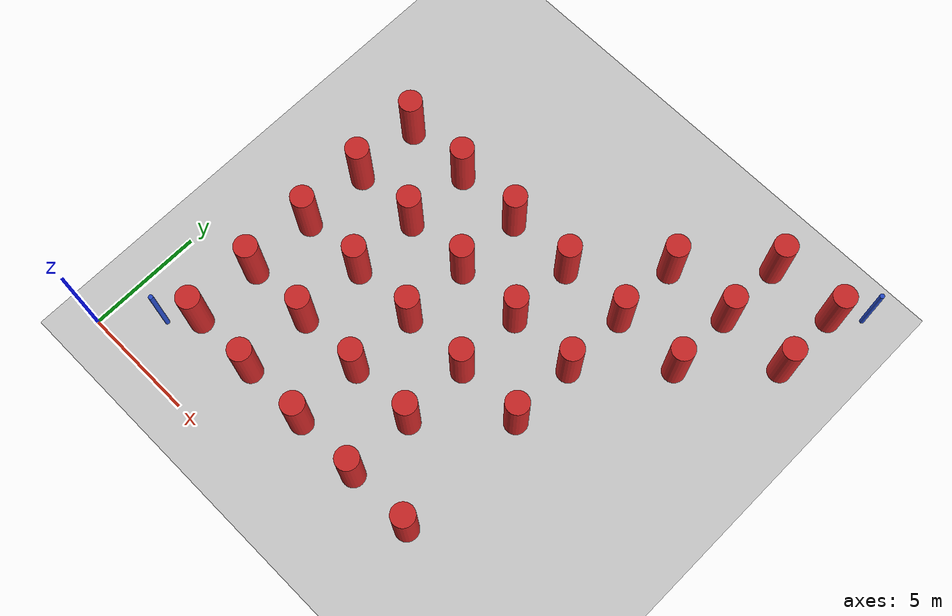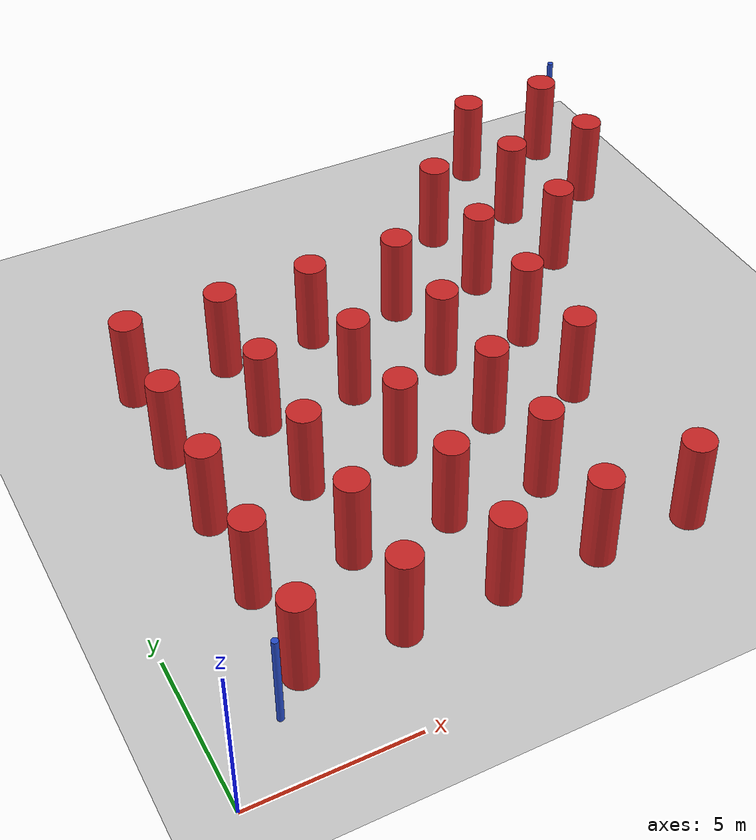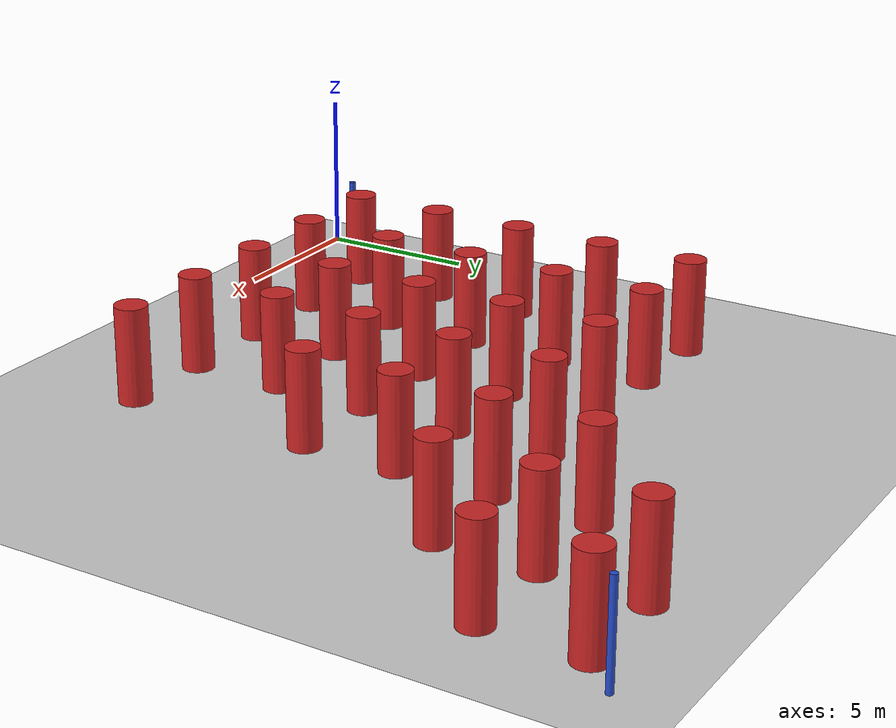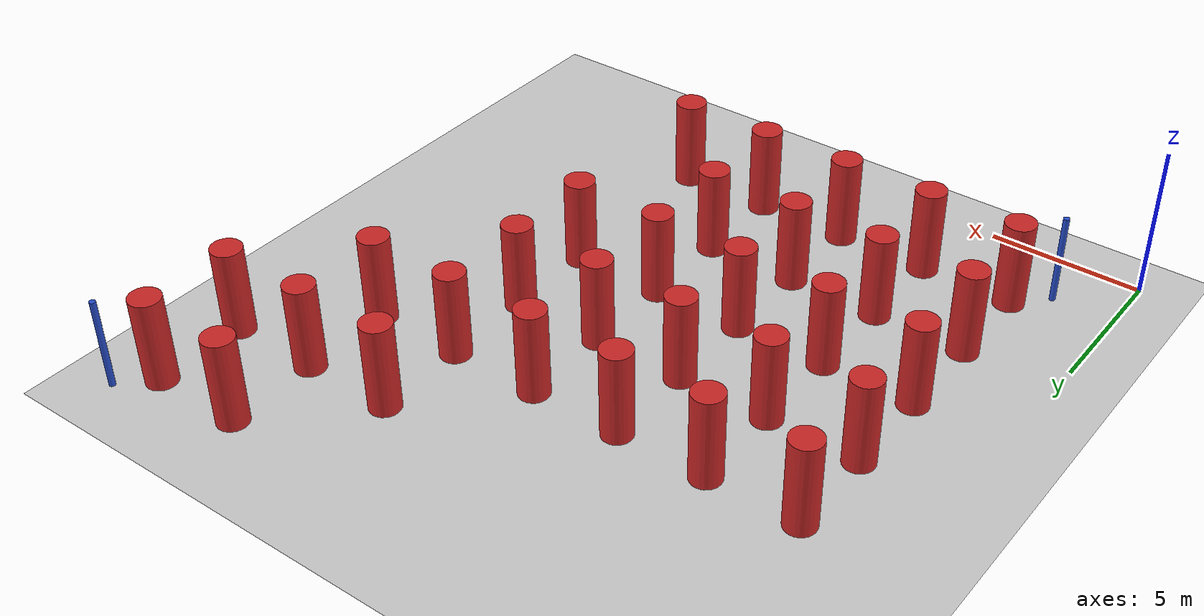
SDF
<sdf version='1.6'>
  <world name='default'>
    <light name='sun' type='directional'>
      <cast_shadows>1</cast_shadows>
      <pose>0 0 3 0 -0 0</pose>
      <diffuse>0.6 0.6 0.6 1</diffuse>
      <specular>0.3 0.3 0.3 1</specular>
      <attenuation>
        <range>1000</range>
        <constant>0.9</constant>
        <linear>0.01</linear>
        <quadratic>0.001</quadratic>
      </attenuation>
      <direction>-0.5 0.1 -0.9</direction>
    </light>
    <model name='ground_plane'>
      <static>1</static>
      <link name='link'>
        <collision name='collision'>
          <geometry>
            <plane>
              <normal>0 0 1</normal>
              <size>100 100</size>
            </plane>
          </geometry>
          <surface>
            <friction>
              <ode>
                <mu>100</mu>
                <mu2>15</mu2>
              </ode>
            </friction>
            <bounce/>
            <contact>
              <ode/>
            </contact>
          </surface>
          <max_contacts>9</max_contacts>
        </collision>
        <visual name='visual'>
          <cast_shadows>0</cast_shadows>
          <geometry>
            <plane>
              <normal>0 0 1</normal>
              <size>100 100</size>
            </plane>
          </geometry>
          <material>
            <script>
              <uri>file://media/materials/scripts/gazebo.material</uri>
              <name>Gazebo/Grey</name>
            </script>
          </material>
        </visual>
        <velocity_decay>
          <linear>0</linear>
          <angular>0</angular>
        </velocity_decay>
        <self_collide>0</self_collide>
        <kinematic>0</kinematic>
        <gravity>1</gravity>
      </link>
    </model>
    <physics type='ode'>
      <max_step_size>0.01</max_step_size>
      <real_time_factor>1</real_time_factor>
      <real_time_update_rate>100</real_time_update_rate>
      <gravity>0 0 -9.6</gravity>
    </physics>
    <scene>
      <ambient>0.6 0.6 0.6 1</ambient>
      <background>0.7 0.7 0.7 1</background>
      <shadows>1</shadows>
    </scene>
    <spherical_coordinates>
      <surface_model>EARTH_WGS84</surface_model>
      <latitude_deg>0</latitude_deg>
      <longitude_deg>0</longitude_deg>
      <elevation>0</elevation>
      <heading_deg>0</heading_deg>
    </spherical_coordinates>
    <model name='cylinder_1'>
      <pose>3 3 1.5 0 -0 0</pose>
      <link name='link'>
        <inertial>
          <mass>1000</mass>
          <inertia>
            <ixx>1000</ixx>
            <ixy>0</ixy>
            <ixz>0</ixz>
            <iyy>1000</iyy>
            <iyz>0</iyz>
            <izz>1000</izz>
          </inertia>
        </inertial>
        <collision name='collision'>
          <geometry>
            <cylinder>
              <radius>0.5</radius>
              <length>3</length>
            </cylinder>
          </geometry>
          <max_contacts>9</max_contacts>
          <surface>
            <bounce/>
            <friction>
              <ode/>
            </friction>
            <contact>
              <ode/>
            </contact>
          </surface>
        </collision>
        <visual name='visual'>
          <geometry>
            <cylinder>
              <radius>0.5</radius>
              <length>3</length>
            </cylinder>
          </geometry>
          <material>
            <script>
              <uri>file://media/materials/scripts/gazebo.material</uri>
              <name>Gazebo/Red</name>
            </script>
          </material>
        </visual>
        <velocity_decay>
          <linear>0</linear>
          <angular>0</angular>
        </velocity_decay>
        <self_collide>0</self_collide>
        <kinematic>0</kinematic>
        <gravity>1</gravity>
      </link>
      <static>1</static>
    </model>
    <model name='cylinder_2'>
      <pose>3 6 1.5 0 -0 0</pose>
      <link name='link'>
        <inertial>
          <mass>1000</mass>
          <inertia>
            <ixx>1000</ixx>
            <ixy>0</ixy>
            <ixz>0</ixz>
            <iyy>1000</iyy>
            <iyz>0</iyz>
            <izz>1000</izz>
          </inertia>
        </inertial>
        <collision name='collision'>
          <geometry>
            <cylinder>
              <radius>0.5</radius>
              <length>3</length>
            </cylinder>
          </geometry>
          <max_contacts>9</max_contacts>
          <surface>
            <bounce/>
            <friction>
              <ode/>
            </friction>
            <contact>
              <ode/>
            </contact>
          </surface>
        </collision>
        <visual name='visual'>
          <geometry>
            <cylinder>
              <radius>0.5</radius>
              <length>3</length>
            </cylinder>
          </geometry>
          <material>
            <script>
              <uri>file://media/materials/scripts/gazebo.material</uri>
              <name>Gazebo/Red</name>
            </script>
          </material>
        </visual>
        <velocity_decay>
          <linear>0</linear>
          <angular>0</angular>
        </velocity_decay>
        <self_collide>0</self_collide>
        <kinematic>0</kinematic>
        <gravity>1</gravity>
      </link>
      <static>1</static>
    </model>
    <model name='cylinder_3'>
      <pose>3 9 1.5 0 -0 0</pose>
      <link name='link'>
        <inertial>
          <mass>1000</mass>
          <inertia>
            <ixx>1000</ixx>
            <ixy>0</ixy>
            <ixz>0</ixz>
            <iyy>1000</iyy>
            <iyz>0</iyz>
            <izz>1000</izz>
          </inertia>
        </inertial>
        <collision name='collision'>
          <geometry>
            <cylinder>
              <radius>0.5</radius>
              <length>3</length>
            </cylinder>
          </geometry>
          <max_contacts>9</max_contacts>
          <surface>
            <bounce/>
            <friction>
              <ode/>
            </friction>
            <contact>
              <ode/>
            </contact>
          </surface>
        </collision>
        <visual name='visual'>
          <geometry>
            <cylinder>
              <radius>0.5</radius>
              <length>3</length>
            </cylinder>
          </geometry>
          <material>
            <script>
              <uri>file://media/materials/scripts/gazebo.material</uri>
              <name>Gazebo/Red</name>
            </script>
          </material>
        </visual>
        <velocity_decay>
          <linear>0</linear>
          <angular>0</angular>
        </velocity_decay>
        <self_collide>0</self_collide>
        <kinematic>0</kinematic>
        <gravity>1</gravity>
      </link>
      <static>1</static>
    </model>
    <model name='cylinder_4'>
      <pose>3 12 1.5 0 -0 0</pose>
      <link name='link'>
        <inertial>
          <mass>1000</mass>
          <inertia>
            <ixx>1000</ixx>
            <ixy>0</ixy>
            <ixz>0</ixz>
            <iyy>1000</iyy>
            <iyz>0</iyz>
            <izz>1000</izz>
          </inertia>
        </inertial>
        <collision name='collision'>
          <geometry>
            <cylinder>
              <radius>0.5</radius>
              <length>3</length>
            </cylinder>
          </geometry>
          <max_contacts>9</max_contacts>
          <surface>
            <bounce/>
            <friction>
              <ode/>
            </friction>
            <contact>
              <ode/>
            </contact>
          </surface>
        </collision>
        <visual name='visual'>
          <geometry>
            <cylinder>
              <radius>0.5</radius>
              <length>3</length>
            </cylinder>
          </geometry>
          <material>
            <script>
              <uri>file://media/materials/scripts/gazebo.material</uri>
              <name>Gazebo/Red</name>
            </script>
          </material>
        </visual>
        <velocity_decay>
          <linear>0</linear>
          <angular>0</angular>
        </velocity_decay>
        <self_collide>0</self_collide>
        <kinematic>0</kinematic>
        <gravity>1</gravity>
      </link>
      <static>1</static>
    </model>
    <model name='cylinder_5'>
      <pose>3 15 1.5 0 -0 0</pose>
      <link name='link'>
        <inertial>
          <mass>1000</mass>
          <inertia>
            <ixx>1000</ixx>
            <ixy>0</ixy>
            <ixz>0</ixz>
            <iyy>1000</iyy>
            <iyz>0</iyz>
            <izz>1000</izz>
          </inertia>
        </inertial>
        <collision name='collision'>
          <geometry>
            <cylinder>
              <radius>0.5</radius>
              <length>3</length>
            </cylinder>
          </geometry>
          <max_contacts>9</max_contacts>
          <surface>
            <bounce/>
            <friction>
              <ode/>
            </friction>
            <contact>
              <ode/>
            </contact>
          </surface>
        </collision>
        <visual name='visual'>
          <geometry>
            <cylinder>
              <radius>0.5</radius>
              <length>3</length>
            </cylinder>
          </geometry>
          <material>
            <script>
              <uri>file://media/materials/scripts/gazebo.material</uri>
              <name>Gazebo/Red</name>
            </script>
          </material>
        </visual>
        <velocity_decay>
          <linear>0</linear>
          <angular>0</angular>
        </velocity_decay>
        <self_collide>0</self_collide>
        <kinematic>0</kinematic>
        <gravity>1</gravity>
      </link>
      <static>1</static>
    </model>
    <model name='cylinder_6'>
      <pose>6 3 1.5 0 -0 0</pose>
      <link name='link'>
        <inertial>
          <mass>1000</mass>
          <inertia>
            <ixx>1000</ixx>
            <ixy>0</ixy>
            <ixz>0</ixz>
            <iyy>1000</iyy>
            <iyz>0</iyz>
            <izz>1000</izz>
          </inertia>
        </inertial>
        <collision name='collision'>
          <geometry>
            <cylinder>
              <radius>0.5</radius>
              <length>3</length>
            </cylinder>
          </geometry>
          <max_contacts>9</max_contacts>
          <surface>
            <bounce/>
            <friction>
              <ode/>
            </friction>
            <contact>
              <ode/>
            </contact>
          </surface>
        </collision>
        <visual name='visual'>
          <geometry>
            <cylinder>
              <radius>0.5</radius>
              <length>3</length>
            </cylinder>
          </geometry>
          <material>
            <script>
              <uri>file://media/materials/scripts/gazebo.material</uri>
              <name>Gazebo/Red</name>
            </script>
          </material>
        </visual>
        <velocity_decay>
          <linear>0</linear>
          <angular>0</angular>
        </velocity_decay>
        <self_collide>0</self_collide>
        <kinematic>0</kinematic>
        <gravity>1</gravity>
      </link>
      <static>1</static>
    </model>
    <model name='cylinder_7'>
      <pose>6 6 1.5 0 -0 0</pose>
      <link name='link'>
        <inertial>
          <mass>1000</mass>
          <inertia>
            <ixx>1000</ixx>
            <ixy>0</ixy>
            <ixz>0</ixz>
            <iyy>1000</iyy>
            <iyz>0</iyz>
            <izz>1000</izz>
          </inertia>
        </inertial>
        <collision name='collision'>
          <geometry>
            <cylinder>
              <radius>0.5</radius>
              <length>3</length>
            </cylinder>
          </geometry>
          <max_contacts>9</max_contacts>
          <surface>
            <bounce/>
            <friction>
              <ode/>
            </friction>
            <contact>
              <ode/>
            </contact>
          </surface>
        </collision>
        <visual name='visual'>
          <geometry>
            <cylinder>
              <radius>0.5</radius>
              <length>3</length>
            </cylinder>
          </geometry>
          <material>
            <script>
              <uri>file://media/materials/scripts/gazebo.material</uri>
              <name>Gazebo/Red</name>
            </script>
          </material>
        </visual>
        <velocity_decay>
          <linear>0</linear>
          <angular>0</angular>
        </velocity_decay>
        <self_collide>0</self_collide>
        <kinematic>0</kinematic>
        <gravity>1</gravity>
      </link>
      <static>1</static>
    </model>
    <model name='cylinder_8'>
      <pose>6 9 1.5 0 -0 0</pose>
      <link name='link'>
        <inertial>
          <mass>1000</mass>
          <inertia>
            <ixx>1000</ixx>
            <ixy>0</ixy>
            <ixz>0</ixz>
            <iyy>1000</iyy>
            <iyz>0</iyz>
            <izz>1000</izz>
          </inertia>
        </inertial>
        <collision name='collision'>
          <geometry>
            <cylinder>
              <radius>0.5</radius>
              <length>3</length>
            </cylinder>
          </geometry>
          <max_contacts>9</max_contacts>
          <surface>
            <bounce/>
            <friction>
              <ode/>
            </friction>
            <contact>
              <ode/>
            </contact>
          </surface>
        </collision>
        <visual name='visual'>
          <geometry>
            <cylinder>
              <radius>0.5</radius>
              <length>3</length>
            </cylinder>
          </geometry>
          <material>
            <script>
              <uri>file://media/materials/scripts/gazebo.material</uri>
              <name>Gazebo/Red</name>
            </script>
          </material>
        </visual>
        <velocity_decay>
          <linear>0</linear>
          <angular>0</angular>
        </velocity_decay>
        <self_collide>0</self_collide>
        <kinematic>0</kinematic>
        <gravity>1</gravity>
      </link>
      <static>1</static>
    </model>
    <model name='cylinder_9'>
      <pose>6 12 1.5 0 -0 0</pose>
      <link name='link'>
        <inertial>
          <mass>1000</mass>
          <inertia>
            <ixx>1000</ixx>
            <ixy>0</ixy>
            <ixz>0</ixz>
            <iyy>1000</iyy>
            <iyz>0</iyz>
            <izz>1000</izz>
          </inertia>
        </inertial>
        <collision name='collision'>
          <geometry>
            <cylinder>
              <radius>0.5</radius>
              <length>3</length>
            </cylinder>
          </geometry>
          <max_contacts>9</max_contacts>
          <surface>
            <bounce/>
            <friction>
              <ode/>
            </friction>
            <contact>
              <ode/>
            </contact>
          </surface>
        </collision>
        <visual name='visual'>
          <geometry>
            <cylinder>
              <radius>0.5</radius>
              <length>3</length>
            </cylinder>
          </geometry>
          <material>
            <script>
              <uri>file://media/materials/scripts/gazebo.material</uri>
              <name>Gazebo/Red</name>
            </script>
          </material>
        </visual>
        <velocity_decay>
          <linear>0</linear>
          <angular>0</angular>
        </velocity_decay>
        <self_collide>0</self_collide>
        <kinematic>0</kinematic>
        <gravity>1</gravity>
      </link>
      <static>1</static>
    </model>
    <model name='cylinder_10'>
      <pose>6 15 1.5 0 -0 0</pose>
      <link name='link'>
        <inertial>
          <mass>1000</mass>
          <inertia>
            <ixx>1000</ixx>
            <ixy>0</ixy>
            <ixz>0</ixz>
            <iyy>1000</iyy>
            <iyz>0</iyz>
            <izz>1000</izz>
          </inertia>
        </inertial>
        <collision name='collision'>
          <geometry>
            <cylinder>
              <radius>0.5</radius>
              <length>3</length>
            </cylinder>
          </geometry>
          <max_contacts>9</max_contacts>
          <surface>
            <bounce/>
            <friction>
              <ode/>
            </friction>
            <contact>
              <ode/>
            </contact>
          </surface>
        </collision>
        <visual name='visual'>
          <geometry>
            <cylinder>
              <radius>0.5</radius>
              <length>3</length>
            </cylinder>
          </geometry>
          <material>
            <script>
              <uri>file://media/materials/scripts/gazebo.material</uri>
              <name>Gazebo/Red</name>
            </script>
          </material>
        </visual>
        <velocity_decay>
          <linear>0</linear>
          <angular>0</angular>
        </velocity_decay>
        <self_collide>0</self_collide>
        <kinematic>0</kinematic>
        <gravity>1</gravity>
      </link>
      <static>1</static>
    </model>
    <model name='cylinder_11'>
      <pose>9 3 1.5 0 -0 0</pose>
      <link name='link'>
        <inertial>
          <mass>1000</mass>
          <inertia>
            <ixx>1000</ixx>
            <ixy>0</ixy>
            <ixz>0</ixz>
            <iyy>1000</iyy>
            <iyz>0</iyz>
            <izz>1000</izz>
          </inertia>
        </inertial>
        <collision name='collision'>
          <geometry>
            <cylinder>
              <radius>0.5</radius>
              <length>3</length>
            </cylinder>
          </geometry>
          <max_contacts>9</max_contacts>
          <surface>
            <bounce/>
            <friction>
              <ode/>
            </friction>
            <contact>
              <ode/>
            </contact>
          </surface>
        </collision>
        <visual name='visual'>
          <geometry>
            <cylinder>
              <radius>0.5</radius>
              <length>3</length>
            </cylinder>
          </geometry>
          <material>
            <script>
              <uri>file://media/materials/scripts/gazebo.material</uri>
              <name>Gazebo/Red</name>
            </script>
          </material>
        </visual>
        <velocity_decay>
          <linear>0</linear>
          <angular>0</angular>
        </velocity_decay>
        <self_collide>0</self_collide>
        <kinematic>0</kinematic>
        <gravity>1</gravity>
      </link>
      <static>1</static>
    </model>
    <model name='cylinder_12'>
      <pose>9 6 1.5 0 -0 0</pose>
      <link name='link'>
        <inertial>
          <mass>1000</mass>
          <inertia>
            <ixx>1000</ixx>
            <ixy>0</ixy>
            <ixz>0</ixz>
            <iyy>1000</iyy>
            <iyz>0</iyz>
            <izz>1000</izz>
          </inertia>
        </inertial>
        <collision name='collision'>
          <geometry>
            <cylinder>
              <radius>0.5</radius>
              <length>3</length>
            </cylinder>
          </geometry>
          <max_contacts>9</max_contacts>
          <surface>
            <bounce/>
            <friction>
              <ode/>
            </friction>
            <contact>
              <ode/>
            </contact>
          </surface>
        </collision>
        <visual name='visual'>
          <geometry>
            <cylinder>
              <radius>0.5</radius>
              <length>3</length>
            </cylinder>
          </geometry>
          <material>
            <script>
              <uri>file://media/materials/scripts/gazebo.material</uri>
              <name>Gazebo/Red</name>
            </script>
          </material>
        </visual>
        <velocity_decay>
          <linear>0</linear>
          <angular>0</angular>
        </velocity_decay>
        <self_collide>0</self_collide>
        <kinematic>0</kinematic>
        <gravity>1</gravity>
      </link>
      <static>1</static>
    </model>
    <model name='cylinder_13'>
      <pose>9 9 1.5 0 -0 0</pose>
      <link name='link'>
        <inertial>
          <mass>1000</mass>
          <inertia>
            <ixx>1000</ixx>
            <ixy>0</ixy>
            <ixz>0</ixz>
            <iyy>1000</iyy>
            <iyz>0</iyz>
            <izz>1000</izz>
          </inertia>
        </inertial>
        <collision name='collision'>
          <geometry>
            <cylinder>
              <radius>0.5</radius>
              <length>3</length>
            </cylinder>
          </geometry>
          <max_contacts>9</max_contacts>
          <surface>
            <bounce/>
            <friction>
              <ode/>
            </friction>
            <contact>
              <ode/>
            </contact>
          </surface>
        </collision>
        <visual name='visual'>
          <geometry>
            <cylinder>
              <radius>0.5</radius>
              <length>3</length>
            </cylinder>
          </geometry>
          <material>
            <script>
              <uri>file://media/materials/scripts/gazebo.material</uri>
              <name>Gazebo/Red</name>
            </script>
          </material>
        </visual>
        <velocity_decay>
          <linear>0</linear>
          <angular>0</angular>
        </velocity_decay>
        <self_collide>0</self_collide>
        <kinematic>0</kinematic>
        <gravity>1</gravity>
      </link>
      <static>1</static>
    </model>
    <model name='cylinder_14'>
      <pose>9 12 1.5 0 -0 0</pose>
      <link name='link'>
        <inertial>
          <mass>1000</mass>
          <inertia>
            <ixx>1000</ixx>
            <ixy>0</ixy>
            <ixz>0</ixz>
            <iyy>1000</iyy>
            <iyz>0</iyz>
            <izz>1000</izz>
          </inertia>
        </inertial>
        <collision name='collision'>
          <geometry>
            <cylinder>
              <radius>0.5</radius>
              <length>3</length>
            </cylinder>
          </geometry>
          <max_contacts>9</max_contacts>
          <surface>
            <bounce/>
            <friction>
              <ode/>
            </friction>
            <contact>
              <ode/>
            </contact>
          </surface>
        </collision>
        <visual name='visual'>
          <geometry>
            <cylinder>
              <radius>0.5</radius>
              <length>3</length>
            </cylinder>
          </geometry>
          <material>
            <script>
              <uri>file://media/materials/scripts/gazebo.material</uri>
              <name>Gazebo/Red</name>
            </script>
          </material>
        </visual>
        <velocity_decay>
          <linear>0</linear>
          <angular>0</angular>
        </velocity_decay>
        <self_collide>0</self_collide>
        <kinematic>0</kinematic>
        <gravity>1</gravity>
      </link>
      <static>1</static>
    </model>
    <model name='cylinder_15'>
      <pose>9 15 1.5 0 -0 0</pose>
      <link name='link'>
        <inertial>
          <mass>1000</mass>
          <inertia>
            <ixx>1000</ixx>
            <ixy>0</ixy>
            <ixz>0</ixz>
            <iyy>1000</iyy>
            <iyz>0</iyz>
            <izz>1000</izz>
          </inertia>
        </inertial>
        <collision name='collision'>
          <geometry>
            <cylinder>
              <radius>0.5</radius>
              <length>3</length>
            </cylinder>
          </geometry>
          <max_contacts>9</max_contacts>
          <surface>
            <bounce/>
            <friction>
              <ode/>
            </friction>
            <contact>
              <ode/>
            </contact>
          </surface>
        </collision>
        <visual name='visual'>
          <geometry>
            <cylinder>
              <radius>0.5</radius>
              <length>3</length>
            </cylinder>
          </geometry>
          <material>
            <script>
              <uri>file://media/materials/scripts/gazebo.material</uri>
              <name>Gazebo/Red</name>
            </script>
          </material>
        </visual>
        <velocity_decay>
          <linear>0</linear>
          <angular>0</angular>
        </velocity_decay>
        <self_collide>0</self_collide>
        <kinematic>0</kinematic>
        <gravity>1</gravity>
      </link>
      <static>1</static>
    </model>
    <model name='cylinder_16'>
      <pose>12 3 1.5 0 -0 0</pose>
      <link name='link'>
        <inertial>
          <mass>1000</mass>
          <inertia>
            <ixx>1000</ixx>
            <ixy>0</ixy>
            <ixz>0</ixz>
            <iyy>1000</iyy>
            <iyz>0</iyz>
            <izz>1000</izz>
          </inertia>
        </inertial>
        <collision name='collision'>
          <geometry>
            <cylinder>
              <radius>0.5</radius>
              <length>3</length>
            </cylinder>
          </geometry>
          <max_contacts>9</max_contacts>
          <surface>
            <bounce/>
            <friction>
              <ode/>
            </friction>
            <contact>
              <ode/>
            </contact>
          </surface>
        </collision>
        <visual name='visual'>
          <geometry>
            <cylinder>
              <radius>0.5</radius>
              <length>3</length>
            </cylinder>
          </geometry>
          <material>
            <script>
              <uri>file://media/materials/scripts/gazebo.material</uri>
              <name>Gazebo/Red</name>
            </script>
          </material>
        </visual>
        <velocity_decay>
          <linear>0</linear>
          <angular>0</angular>
        </velocity_decay>
        <self_collide>0</self_collide>
        <kinematic>0</kinematic>
        <gravity>1</gravity>
      </link>
      <static>1</static>
    </model>
    <model name='cylinder_17'>
      <pose>12 6 1.5 0 -0 0</pose>
      <link name='link'>
        <inertial>
          <mass>1000</mass>
          <inertia>
            <ixx>1000</ixx>
            <ixy>0</ixy>
            <ixz>0</ixz>
            <iyy>1000</iyy>
            <iyz>0</iyz>
            <izz>1000</izz>
          </inertia>
        </inertial>
        <collision name='collision'>
          <geometry>
            <cylinder>
              <radius>0.5</radius>
              <length>3</length>
            </cylinder>
          </geometry>
          <max_contacts>9</max_contacts>
          <surface>
            <bounce/>
            <friction>
              <ode/>
            </friction>
            <contact>
              <ode/>
            </contact>
          </surface>
        </collision>
        <visual name='visual'>
          <geometry>
            <cylinder>
              <radius>0.5</radius>
              <length>3</length>
            </cylinder>
          </geometry>
          <material>
            <script>
              <uri>file://media/materials/scripts/gazebo.material</uri>
              <name>Gazebo/Red</name>
            </script>
          </material>
        </visual>
        <velocity_decay>
          <linear>0</linear>
          <angular>0</angular>
        </velocity_decay>
        <self_collide>0</self_collide>
        <kinematic>0</kinematic>
        <gravity>1</gravity>
      </link>
      <static>1</static>
    </model>
    <model name='cylinder_18'>
      <pose>12 9 1.5 0 -0 0</pose>
      <link name='link'>
        <inertial>
          <mass>1000</mass>
          <inertia>
            <ixx>1000</ixx>
            <ixy>0</ixy>
            <ixz>0</ixz>
            <iyy>1000</iyy>
            <iyz>0</iyz>
            <izz>1000</izz>
          </inertia>
        </inertial>
        <collision name='collision'>
          <geometry>
            <cylinder>
              <radius>0.5</radius>
              <length>3</length>
            </cylinder>
          </geometry>
          <max_contacts>9</max_contacts>
          <surface>
            <bounce/>
            <friction>
              <ode/>
            </friction>
            <contact>
              <ode/>
            </contact>
          </surface>
        </collision>
        <visual name='visual'>
          <geometry>
            <cylinder>
              <radius>0.5</radius>
              <length>3</length>
            </cylinder>
          </geometry>
          <material>
            <script>
              <uri>file://media/materials/scripts/gazebo.material</uri>
              <name>Gazebo/Red</name>
            </script>
          </material>
        </visual>
        <velocity_decay>
          <linear>0</linear>
          <angular>0</angular>
        </velocity_decay>
        <self_collide>0</self_collide>
        <kinematic>0</kinematic>
        <gravity>1</gravity>
      </link>
      <static>1</static>
    </model>
    <model name='cylinder_19'>
      <pose>12 12 1.5 0 -0 0</pose>
      <link name='link'>
        <inertial>
          <mass>1000</mass>
          <inertia>
            <ixx>1000</ixx>
            <ixy>0</ixy>
            <ixz>0</ixz>
            <iyy>1000</iyy>
            <iyz>0</iyz>
            <izz>1000</izz>
          </inertia>
        </inertial>
        <collision name='collision'>
          <geometry>
            <cylinder>
              <radius>0.5</radius>
              <length>3</length>
            </cylinder>
          </geometry>
          <max_contacts>9</max_contacts>
          <surface>
            <bounce/>
            <friction>
              <ode/>
            </friction>
            <contact>
              <ode/>
            </contact>
          </surface>
        </collision>
        <visual name='visual'>
          <geometry>
            <cylinder>
              <radius>0.5</radius>
              <length>3</length>
            </cylinder>
          </geometry>
          <material>
            <script>
              <uri>file://media/materials/scripts/gazebo.material</uri>
              <name>Gazebo/Red</name>
            </script>
          </material>
        </visual>
        <velocity_decay>
          <linear>0</linear>
          <angular>0</angular>
        </velocity_decay>
        <self_collide>0</self_collide>
        <kinematic>0</kinematic>
        <gravity>1</gravity>
      </link>
      <static>1</static>
    </model>
    <model name='cylinder_20'>
      <pose>12 15 1.5 0 -0 0</pose>
      <link name='link'>
        <inertial>
          <mass>1000</mass>
          <inertia>
            <ixx>1000</ixx>
            <ixy>0</ixy>
            <ixz>0</ixz>
            <iyy>1000</iyy>
            <iyz>0</iyz>
            <izz>1000</izz>
          </inertia>
        </inertial>
        <collision name='collision'>
          <geometry>
            <cylinder>
              <radius>0.5</radius>
              <length>3</length>
            </cylinder>
          </geometry>
          <max_contacts>9</max_contacts>
          <surface>
            <bounce/>
            <friction>
              <ode/>
            </friction>
            <contact>
              <ode/>
            </contact>
          </surface>
        </collision>
        <visual name='visual'>
          <geometry>
            <cylinder>
              <radius>0.5</radius>
              <length>3</length>
            </cylinder>
          </geometry>
          <material>
            <script>
              <uri>file://media/materials/scripts/gazebo.material</uri>
              <name>Gazebo/Red</name>
            </script>
          </material>
        </visual>
        <velocity_decay>
          <linear>0</linear>
          <angular>0</angular>
        </velocity_decay>
        <self_collide>0</self_collide>
        <kinematic>0</kinematic>
        <gravity>1</gravity>
      </link>
      <static>1</static>
    </model>
    <model name='cylinder_21'>
      <pose>15 3 1.5 0 -0 0</pose>
      <link name='link'>
        <inertial>
          <mass>1000</mass>
          <inertia>
            <ixx>1000</ixx>
            <ixy>0</ixy>
            <ixz>0</ixz>
            <iyy>1000</iyy>
            <iyz>0</iyz>
            <izz>1000</izz>
          </inertia>
        </inertial>
        <collision name='collision'>
          <geometry>
            <cylinder>
              <radius>0.5</radius>
              <length>3</length>
            </cylinder>
          </geometry>
          <max_contacts>9</max_contacts>
          <surface>
            <bounce/>
            <friction>
              <ode/>
            </friction>
            <contact>
              <ode/>
            </contact>
          </surface>
        </collision>
        <visual name='visual'>
          <geometry>
            <cylinder>
              <radius>0.5</radius>
              <length>3</length>
            </cylinder>
          </geometry>
          <material>
            <script>
              <uri>file://media/materials/scripts/gazebo.material</uri>
              <name>Gazebo/Red</name>
            </script>
          </material>
        </visual>
        <velocity_decay>
          <linear>0</linear>
          <angular>0</angular>
        </velocity_decay>
        <self_collide>0</self_collide>
        <kinematic>0</kinematic>
        <gravity>1</gravity>
      </link>
      <static>1</static>
    </model>
    <model name='cylinder_22'>
      <pose>15 18 1.5 0 -0 0</pose>
      <link name='link'>
        <inertial>
          <mass>1000</mass>
          <inertia>
            <ixx>1000</ixx>
            <ixy>0</ixy>
            <ixz>0</ixz>
            <iyy>1000</iyy>
            <iyz>0</iyz>
            <izz>1000</izz>
          </inertia>
        </inertial>
        <collision name='collision'>
          <geometry>
            <cylinder>
              <radius>0.5</radius>
              <length>3</length>
            </cylinder>
          </geometry>
          <max_contacts>9</max_contacts>
          <surface>
            <bounce/>
            <friction>
              <ode/>
            </friction>
            <contact>
              <ode/>
            </contact>
          </surface>
        </collision>
        <visual name='visual'>
          <geometry>
            <cylinder>
              <radius>0.5</radius>
              <length>3</length>
            </cylinder>
          </geometry>
          <material>
            <script>
              <uri>file://media/materials/scripts/gazebo.material</uri>
              <name>Gazebo/Red</name>
            </script>
          </material>
        </visual>
        <velocity_decay>
          <linear>0</linear>
          <angular>0</angular>
        </velocity_decay>
        <self_collide>0</self_collide>
        <kinematic>0</kinematic>
        <gravity>1</gravity>
      </link>
      <static>1</static>
    </model>
    <model name='cylinder_23'>
      <pose>15 9 1.5 0 -0 0</pose>
      <link name='link'>
        <inertial>
          <mass>1000</mass>
          <inertia>
            <ixx>1000</ixx>
            <ixy>0</ixy>
            <ixz>0</ixz>
            <iyy>1000</iyy>
            <iyz>0</iyz>
            <izz>1000</izz>
          </inertia>
        </inertial>
        <collision name='collision'>
          <geometry>
            <cylinder>
              <radius>0.5</radius>
              <length>3</length>
            </cylinder>
          </geometry>
          <max_contacts>9</max_contacts>
          <surface>
            <bounce/>
            <friction>
              <ode/>
            </friction>
            <contact>
              <ode/>
            </contact>
          </surface>
        </collision>
        <visual name='visual'>
          <geometry>
            <cylinder>
              <radius>0.5</radius>
              <length>3</length>
            </cylinder>
          </geometry>
          <material>
            <script>
              <uri>file://media/materials/scripts/gazebo.material</uri>
              <name>Gazebo/Red</name>
            </script>
          </material>
        </visual>
        <velocity_decay>
          <linear>0</linear>
          <angular>0</angular>
        </velocity_decay>
        <self_collide>0</self_collide>
        <kinematic>0</kinematic>
        <gravity>1</gravity>
      </link>
      <static>1</static>
    </model>
    <model name='cylinder_24'>
      <pose>15 12 1.5 0 -0 0</pose>
      <link name='link'>
        <inertial>
          <mass>1000</mass>
          <inertia>
            <ixx>1000</ixx>
            <ixy>0</ixy>
            <ixz>0</ixz>
            <iyy>1000</iyy>
            <iyz>0</iyz>
            <izz>1000</izz>
          </inertia>
        </inertial>
        <collision name='collision'>
          <geometry>
            <cylinder>
              <radius>0.5</radius>
              <length>3</length>
            </cylinder>
          </geometry>
          <max_contacts>9</max_contacts>
          <surface>
            <bounce/>
            <friction>
              <ode/>
            </friction>
            <contact>
              <ode/>
            </contact>
          </surface>
        </collision>
        <visual name='visual'>
          <geometry>
            <cylinder>
              <radius>0.5</radius>
              <length>3</length>
            </cylinder>
          </geometry>
          <material>
            <script>
              <uri>file://media/materials/scripts/gazebo.material</uri>
              <name>Gazebo/Red</name>
            </script>
          </material>
        </visual>
        <velocity_decay>
          <linear>0</linear>
          <angular>0</angular>
        </velocity_decay>
        <self_collide>0</self_collide>
        <kinematic>0</kinematic>
        <gravity>1</gravity>
      </link>
      <static>1</static>
    </model>
    <model name='cylinder_24'>
      <pose>15 15 1.5 0 -0 0</pose>
      <link name='link'>
        <inertial>
          <mass>1000</mass>
          <inertia>
            <ixx>1000</ixx>
            <ixy>0</ixy>
            <ixz>0</ixz>
            <iyy>1000</iyy>
            <iyz>0</iyz>
            <izz>1000</izz>
          </inertia>
        </inertial>
        <collision name='collision'>
          <geometry>
            <cylinder>
              <radius>0.5</radius>
              <length>3</length>
            </cylinder>
          </geometry>
          <max_contacts>9</max_contacts>
          <surface>
            <bounce/>
            <friction>
              <ode/>
            </friction>
            <contact>
              <ode/>
            </contact>
          </surface>
        </collision>
        <visual name='visual'>
          <geometry>
            <cylinder>
              <radius>0.5</radius>
              <length>3</length>
            </cylinder>
          </geometry>
          <material>
            <script>
              <uri>file://media/materials/scripts/gazebo.material</uri>
              <name>Gazebo/Red</name>
            </script>
          </material>
        </visual>
        <velocity_decay>
          <linear>0</linear>
          <angular>0</angular>
        </velocity_decay>
        <self_collide>0</self_collide>
        <kinematic>0</kinematic>
        <gravity>1</gravity>
      </link>
      <static>1</static>
    </model>
    <model name='cylinder_25'>
      <pose>18 15 1.5 0 -0 0</pose>
      <link name='link'>
        <inertial>
          <mass>1000</mass>
          <inertia>
            <ixx>1000</ixx>
            <ixy>0</ixy>
            <ixz>0</ixz>
            <iyy>1000</iyy>
            <iyz>0</iyz>
            <izz>1000</izz>
          </inertia>
        </inertial>
        <collision name='collision'>
          <geometry>
            <cylinder>
              <radius>0.5</radius>
              <length>3</length>
            </cylinder>
          </geometry>
          <max_contacts>9</max_contacts>
          <surface>
            <bounce/>
            <friction>
              <ode/>
            </friction>
            <contact>
              <ode/>
            </contact>
          </surface>
        </collision>
        <visual name='visual'>
          <geometry>
            <cylinder>
              <radius>0.5</radius>
              <length>3</length>
            </cylinder>
          </geometry>
          <material>
            <script>
              <uri>file://media/materials/scripts/gazebo.material</uri>
              <name>Gazebo/Red</name>
            </script>
          </material>
        </visual>
        <velocity_decay>
          <linear>0</linear>
          <angular>0</angular>
        </velocity_decay>
        <self_collide>0</self_collide>
        <kinematic>0</kinematic>
        <gravity>1</gravity>
      </link>
      <static>1</static>
    </model>
    <model name='cylinder_26'>
      <pose>18 18 1.5 0 -0 0</pose>
      <link name='link'>
        <inertial>
          <mass>1000</mass>
          <inertia>
            <ixx>1000</ixx>
            <ixy>0</ixy>
            <ixz>0</ixz>
            <iyy>1000</iyy>
            <iyz>0</iyz>
            <izz>1000</izz>
          </inertia>
        </inertial>
        <collision name='collision'>
          <geometry>
            <cylinder>
              <radius>0.5</radius>
              <length>3</length>
            </cylinder>
          </geometry>
          <max_contacts>9</max_contacts>
          <surface>
            <bounce/>
            <friction>
              <ode/>
            </friction>
            <contact>
              <ode/>
            </contact>
          </surface>
        </collision>
        <visual name='visual'>
          <geometry>
            <cylinder>
              <radius>0.5</radius>
              <length>3</length>
            </cylinder>
          </geometry>
          <material>
            <script>
              <uri>file://media/materials/scripts/gazebo.material</uri>
              <name>Gazebo/Red</name>
            </script>
          </material>
        </visual>
        <velocity_decay>
          <linear>0</linear>
          <angular>0</angular>
        </velocity_decay>
        <self_collide>0</self_collide>
        <kinematic>0</kinematic>
        <gravity>1</gravity>
      </link>
      <static>1</static>
    </model>
    <model name='cylinder_27'>
      <pose>18 21 1.5 0 -0 0</pose>
      <link name='link'>
        <inertial>
          <mass>1000</mass>
          <inertia>
            <ixx>1000</ixx>
            <ixy>0</ixy>
            <ixz>0</ixz>
            <iyy>1000</iyy>
            <iyz>0</iyz>
            <izz>1000</izz>
          </inertia>
        </inertial>
        <collision name='collision'>
          <geometry>
            <cylinder>
              <radius>0.5</radius>
              <length>3</length>
            </cylinder>
          </geometry>
          <max_contacts>9</max_contacts>
          <surface>
            <bounce/>
            <friction>
              <ode/>
            </friction>
            <contact>
              <ode/>
            </contact>
          </surface>
        </collision>
        <visual name='visual'>
          <geometry>
            <cylinder>
              <radius>0.5</radius>
              <length>3</length>
            </cylinder>
          </geometry>
          <material>
            <script>
              <uri>file://media/materials/scripts/gazebo.material</uri>
              <name>Gazebo/Red</name>
            </script>
          </material>
        </visual>
        <velocity_decay>
          <linear>0</linear>
          <angular>0</angular>
        </velocity_decay>
        <self_collide>0</self_collide>
        <kinematic>0</kinematic>
        <gravity>1</gravity>
      </link>
      <static>1</static>
    </model>
    <model name='cylinder_28'>
      <pose>21 18 1.5 0 -0 0</pose>
      <link name='link'>
        <inertial>
          <mass>1000</mass>
          <inertia>
            <ixx>1000</ixx>
            <ixy>0</ixy>
            <ixz>0</ixz>
            <iyy>1000</iyy>
            <iyz>0</iyz>
            <izz>1000</izz>
          </inertia>
        </inertial>
        <collision name='collision'>
          <geometry>
            <cylinder>
              <radius>0.5</radius>
              <length>3</length>
            </cylinder>
          </geometry>
          <max_contacts>9</max_contacts>
          <surface>
            <bounce/>
            <friction>
              <ode/>
            </friction>
            <contact>
              <ode/>
            </contact>
          </surface>
        </collision>
        <visual name='visual'>
          <geometry>
            <cylinder>
              <radius>0.5</radius>
              <length>3</length>
            </cylinder>
          </geometry>
          <material>
            <script>
              <uri>file://media/materials/scripts/gazebo.material</uri>
              <name>Gazebo/Red</name>
            </script>
          </material>
        </visual>
        <velocity_decay>
          <linear>0</linear>
          <angular>0</angular>
        </velocity_decay>
        <self_collide>0</self_collide>
        <kinematic>0</kinematic>
        <gravity>1</gravity>
      </link>
      <static>1</static>
    </model>
    <model name='cylinder_29'>
      <pose>21 21 1.5 0 -0 0</pose>
      <link name='link'>
        <inertial>
          <mass>1000</mass>
          <inertia>
            <ixx>1000</ixx>
            <ixy>0</ixy>
            <ixz>0</ixz>
            <iyy>1000</iyy>
            <iyz>0</iyz>
            <izz>1000</izz>
          </inertia>
        </inertial>
        <collision name='collision'>
          <geometry>
            <cylinder>
              <radius>0.5</radius>
              <length>3</length>
            </cylinder>
          </geometry>
          <max_contacts>9</max_contacts>
          <surface>
            <bounce/>
            <friction>
              <ode/>
            </friction>
            <contact>
              <ode/>
            </contact>
          </surface>
        </collision>
        <visual name='visual'>
          <geometry>
            <cylinder>
              <radius>0.5</radius>
              <length>3</length>
            </cylinder>
          </geometry>
          <material>
            <script>
              <uri>file://media/materials/scripts/gazebo.material</uri>
              <name>Gazebo/Red</name>
            </script>
          </material>
        </visual>
        <velocity_decay>
          <linear>0</linear>
          <angular>0</angular>
        </velocity_decay>
        <self_collide>0</self_collide>
        <kinematic>0</kinematic>
        <gravity>1</gravity>
      </link>
      <static>1</static>
    </model>
    <model name='start'>
      <pose>2 2 1.5 0 -0 0</pose>
      <link name='link'>
        <inertial>
          <mass>1000</mass>
          <inertia>
            <ixx>1000</ixx>
            <ixy>0</ixy>
            <ixz>0</ixz>
            <iyy>1000</iyy>
            <iyz>0</iyz>
            <izz>1000</izz>
          </inertia>
        </inertial>
        <visual name='visual'>
          <geometry>
            <cylinder>
              <radius>0.1</radius>
              <length>3</length>
            </cylinder>
          </geometry>
          <material>
            <script>
              <uri>file://media/materials/scripts/gazebo.material</uri>
              <name>Gazebo/Blue</name>
            </script>
          </material>
        </visual>
        <velocity_decay>
          <linear>0</linear>
          <angular>0</angular>
        </velocity_decay>
        <self_collide>0</self_collide>
        <kinematic>0</kinematic>
        <gravity>1</gravity>
      </link>
      <static>1</static>
    </model>
    <model name='start'>
      <pose>22 22 1.5 0 -0 0</pose>
      <link name='link'>
        <inertial>
          <mass>1000</mass>
          <inertia>
            <ixx>1000</ixx>
            <ixy>0</ixy>
            <ixz>0</ixz>
            <iyy>1000</iyy>
            <iyz>0</iyz>
            <izz>1000</izz>
          </inertia>
        </inertial>
        <visual name='visual'>
          <geometry>
            <cylinder>
              <radius>0.1</radius>
              <length>3</length>
            </cylinder>
          </geometry>
          <material>
            <script>
              <uri>file://media/materials/scripts/gazebo.material</uri>
              <name>Gazebo/Blue</name>
            </script>
          </material>
        </visual>
        <velocity_decay>
          <linear>0</linear>
          <angular>0</angular>
        </velocity_decay>
        <self_collide>0</self_collide>
        <kinematic>0</kinematic>
        <gravity>1</gravity>
      </link>
      <static>1</static>
    </model>
    <gui fullscreen='0'>
      <camera name='user_camera'>
        <pose>26.5424 -3.7085 28.7054 0 0.865796 2.096</pose>
        <view_controller>orbit</view_controller>
      </camera>
    </gui>
  </world>
</sdf>
